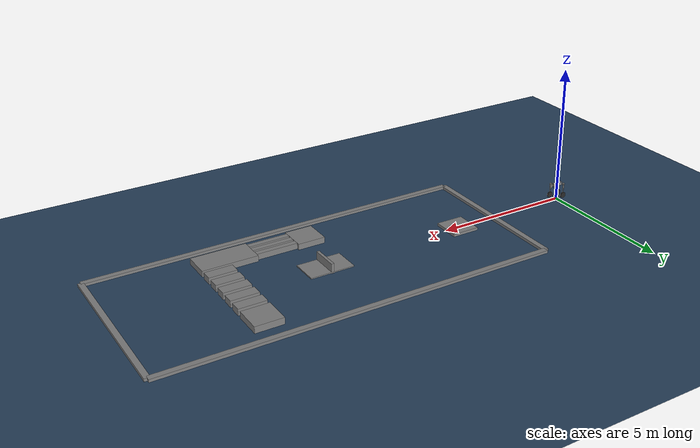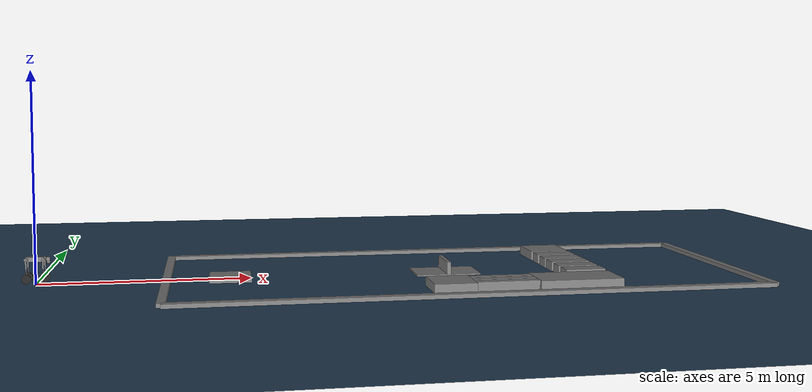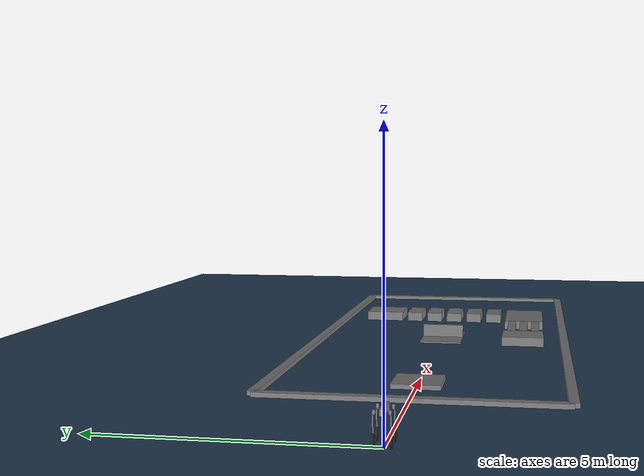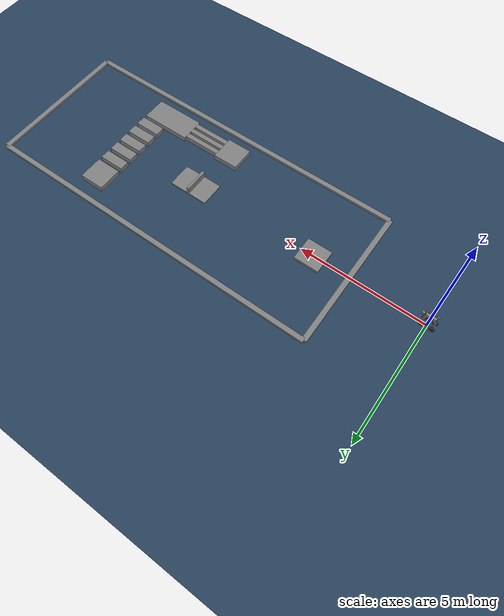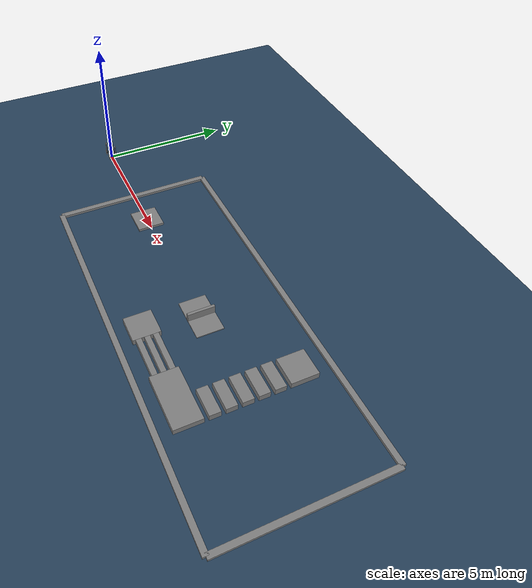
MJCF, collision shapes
<mujoco model="go2w scene">
  <include file="go2w.xml"/>

  <statistic center="0 0 0.1" extent="0.8"/>

  <visual>
    <headlight diffuse="0.6 0.6 0.6" ambient="0.3 0.3 0.3" specular="0 0 0"/>
    <rgba haze="0.15 0.25 0.35 1"/>
    <global azimuth="-130" elevation="-20"/>
  </visual>

  <asset>
    <texture type="skybox" builtin="gradient" rgb1="0.3 0.5 0.7" rgb2="0 0 0" width="512" height="3072"/>
    <texture type="2d" name="groundplane" builtin="checker" mark="edge" rgb1="0.2 0.3 0.4" rgb2="0.1 0.2 0.3"
      markrgb="0.8 0.8 0.8" width="300" height="300"/>
    <material name="groundplane" texture="groundplane" texuniform="true" texrepeat="5 5" reflectance="0.2"/>
  </asset>

  <worldbody>
    <light pos="0 0 1.5" dir="0 0 -1" directional="true"/>
    <geom name="floor" size="0 0 0.05" type="plane" material="groundplane"/>

        <geom pos="10 3 0.04" type="box"  size=" 7 0.1 0.05" quat="1.0 0 0 0"/>
    <geom pos="10 -3 0.04" type="box"  size=" 7 0.1 0.05" quat="1.0 0 0 0"/>
    <geom pos="3 0 0.04" type="box"  size=" 0.1 3 0.05" quat="1.0 0 0 0"/>
    <geom pos="17 0 0.04" type="box"  size=" 0.1 3 0.05" quat="1.0 0 0 0"/>
    <!--启动区 -->
    <geom pos="4.5 0 0.04" type="box"  size=" 0.5 0.5 0.05" quat="1.0 0 0 0"/>
    <!-- 斜坡 -->
    <geom pos="9.5 -2 0" type="box"  size=" 0.5 0.5 0.2" quat="1.0 0 0 0"/>
    <geom pos="10.75 -1.7 0" type="box"  size=" 0.75 0.1 0.2" quat="1.0 0 0 0"/>
    <geom pos="10.75 -2 0" type="box"  size=" 0.75 0.1 0.2" quat="1.0 0 0 0"/>
    <geom pos="10.75 -2.3 0" type="box"  size=" 0.75 0.1 0.2" quat="1.0 0 0 0"/>
    <geom pos="12.5 -2 0" type="box"  size=" 1 0.5 0.2" quat="1.0 0 0 0"/>

    <geom pos="13 -1.15 0.02" type="box"  size="0.5 0.2 0.2" quat="1.0 0 0 0"/>
    <geom pos="13 -0.6 0.02" type="box"  size="0.5 0.2 0.2" quat="1.0 0 0 0"/>
    <geom pos="13 -0.05 0.02" type="box"  size="0.5 0.2 0.2" quat="1.0 0 0 0"/>
    <geom pos="13 0.5 0.02" type="box"  size="0.5 0.2 0.2" quat="1.0 0 0 0"/>
    <geom pos="13 1.05 0.02" type="box"  size="0.5 0.2 0.2" quat="1.0 0 0 0"/>

    <geom pos="13 1.9 0.02" type="box"  size="0.5 0.5 0.2" quat="1.0 0 0 0"/>
        <!-- 高墙 -->
    <geom pos="9.8 0 0.02" type="box"  size="0.8 0.5 0.02" quat="1.0 0 0 0"/>
    <geom pos="9.8 0 0.02" type="box"  size="0.05 0.5 0.32" quat="1.0 0 0 0"/>
  </worldbody>
</mujoco>

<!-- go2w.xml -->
<mujoco model="go2">
  <compiler angle="radian" meshdir="assets" autolimits="true" />

  <option cone="elliptic" impratio="100" />

  <default>
    <default class="go2">
      <geom friction="0.4" margin="0.001" condim="1" />
      <joint axis="0 1 0" damping="0.1" armature="0.01" frictionloss="0.2" />
      <motor ctrlrange="-23.7 23.7" />
      <default class="abduction">
        <joint axis="1 0 0" range="-1.0472 1.0472" />
      </default>
      <default class="hip">
        <default class="front_hip">
          <joint range="-1.5708 3.4907" />
        </default>
        <default class="back_hip">
          <joint range="-0.5236 4.5379" />
        </default>
      </default>
      <default class="knee">
        <joint range="-2.7227 -0.83776" />
        <motor ctrlrange="-45.43 45.43" />
      </default>
      <default class="visual">
        <geom type="mesh" contype="0" conaffinity="0" group="2" />
      </default>
      <default class="collision">
        <geom group="3" />
        <default class="foot">
          <geom size="0.022" pos="-0.002 0 -0.2264" priority="1" condim="6"
            friction="0.8 0.02 0.01" />
        </default>
      </default>
    </default>
  </default>

  <asset>
    <material name="metal" rgba=".9 .95 .95 1" />
    <material name="black" rgba="0 0 0 1" />
    <material name="white" rgba="1 1 1 1" />
    <material name="gray" rgba="0.671705 0.692426 0.774270 1" />

    <mesh file="base_0.obj" />
    <mesh file="base_1.obj" />
    <mesh file="base_2.obj" />
    <mesh file="base_3.obj" />
    <mesh file="base_4.obj" />
    <mesh file="hip_0.obj" />
    <mesh file="hip_1.obj" />
    <mesh file="thigh_0.obj" />
    <mesh file="thigh_1.obj" />
    <mesh file="thigh_mirror_0.obj" />
    <mesh file="thigh_mirror_1.obj" />
    <mesh file="calf_mirror_0.obj" />
    <mesh file="calf_mirror_1.obj" />
    <mesh file="calf.stl" />
    <mesh file="calf_mirror.stl" />
    <mesh file="foot.obj" />
    <mesh file="wheel.stl" />
  </asset>

  <worldbody>
    <body name="base_link" pos="0 0 0.6" childclass="go2">
      <inertial pos="0.021112 0 -0.005366" quat="-0.000543471 0.713435 -0.00173769 0.700719"
        mass="6.921"
        diaginertia="0.107027 0.0980771 0.0244531" />
      <freejoint />
      <geom mesh="base_0" material="black" class="visual" />
      <geom mesh="base_1" material="black" class="visual" />
      <geom mesh="base_2" material="black" class="visual" />
      <geom mesh="base_3" material="white" class="visual" />
      <geom mesh="base_4" material="gray" class="visual" />
      <geom size="0.1881 0.04675 0.057" type="box" class="collision" />
      <geom size="0.05 0.045" pos="0.285 0 0.01" type="cylinder" class="collision" />
      <geom size="0.047" pos="0.293 0 -0.06" class="collision" />
      <site name="imu" pos="-0.02557 0 0.04232" />
      <body name="FL_hip" pos="0.1934 0.0465 0">
        <inertial pos="-0.0054 0.00194 -0.000105" quat="0.497014 0.499245 0.505462 0.498237"
          mass="0.678"
          diaginertia="0.00088403 0.000596003 0.000479967" />
        <joint name="FL_hip_joint" class="abduction" />
        <geom mesh="hip_0" material="metal" class="visual" />
        <geom mesh="hip_1" material="gray" class="visual" />
        <geom size="0.046 0.02" pos="0 0.08 0" quat="1 1 0 0" type="cylinder" class="collision" />
        <body name="FL_thigh" pos="0 0.0955 0">
          <inertial pos="-0.00374 -0.0223 -0.0327" quat="0.829533 0.0847635 -0.0200632 0.551623"
            mass="1.152"
            diaginertia="0.00594973 0.00584149 0.000878787" />
          <joint name="FL_thigh_joint" class="front_hip" />
          <geom mesh="thigh_0" material="metal" class="visual" />
          <geom mesh="thigh_1" material="gray" class="visual" />
          <geom size="0.1065 0.01225 0.017" pos="0 0 -0.1065" quat="0.707107 0 0.707107 0"
            type="box" class="collision" />
          <body name="FL_calf" pos="0 0 -0.213">
            <inertial pos="0.00629595 -0.000622121 -0.141417"
              quat="0.710672 0.00154099 -0.00450087 0.703508"
              mass="0.241352" diaginertia="0.0014901 0.00146356 5.31397e-05" />
            <joint name="FL_calf_joint" class="knee" />
            <geom mesh="calf" material="gray" class="visual" />
            <geom size="0.012 0.06" pos="0.008 0 -0.06" quat="0.994493 0 -0.104807 0"
              type="cylinder" class="collision" />
            <geom size="0.011 0.0325" pos="0.02 0 -0.148" quat="0.999688 0 0.0249974 0"
              type="cylinder" class="collision" />

            <body name="FL_wheel_link" pos="0 0 -0.2264">
              <inertial pos="-0.0 0.04 -0.0"
                quat="0.661419 0.248219 0.250051 0.662108" mass="0.98"
                diaginertia="0.003 0.0016 0.0016" />
              <joint name="FL_wheel_joint" pos="0 0 0" axis="0 1 0" />
              <geom type="cylinder" size="0.11 0.02" rgba="0.15 0.15 0.15 1" pos="0 0.0 0"
                    quat="0.707 0.707 0.0 0.0"  />
            </body>

          </body>
        </body>
      </body>
      <body name="FR_hip" pos="0.1934 -0.0465 0">
        <inertial pos="-0.0054 -0.00194 -0.000105" quat="0.498237 0.505462 0.499245 0.497014"
          mass="0.678"
          diaginertia="0.00088403 0.000596003 0.000479967" />
        <joint name="FR_hip_joint" class="abduction" />
        <geom mesh="hip_0" material="metal" class="visual" quat="4.63268e-05 1 0 0" />
        <geom mesh="hip_1" material="gray" class="visual" quat="4.63268e-05 1 0 0" />
        <geom size="0.046 0.02" pos="0 -0.08 0" quat="0.707107 0.707107 0 0" type="cylinder"
          class="collision" />
        <body name="FR_thigh" pos="0 -0.0955 0">
          <inertial pos="-0.00374 0.0223 -0.0327" quat="0.551623 -0.0200632 0.0847635 0.829533"
            mass="1.152"
            diaginertia="0.00594973 0.00584149 0.000878787" />
          <joint name="FR_thigh_joint" class="front_hip" />
          <geom mesh="thigh_mirror_0" material="metal" class="visual" />
          <geom mesh="thigh_mirror_1" material="gray" class="visual" />
          <geom size="0.1065 0.01225 0.017" pos="0 0 -0.1065" quat="0.707107 0 0.707107 0"
            type="box" class="collision" />
          <body name="FR_calf" pos="0 0 -0.213">
            <inertial pos="0.00629595 0.000622121 -0.141417"
              quat="0.703508 -0.00450087 0.00154099 0.710672"
              mass="0.241352" diaginertia="0.0014901 0.00146356 5.31397e-05" />
            <joint name="FR_calf_joint" class="knee" />
            <geom mesh="calf_mirror" material="gray" class="visual" />
            <geom size="0.013 0.06" pos="0.01 0 -0.06" quat="0.995004 0 -0.0998334 0"
              type="cylinder" class="collision" />
            <geom size="0.011 0.0325" pos="0.02 0 -0.148" quat="0.999688 0 0.0249974 0"
              type="cylinder" class="collision" />

            <body name="FR_wheel_link" pos="0 0 -0.2264">
              <inertial pos="-0.0 -0.04 -0.0"
                quat="0.661419 0.248219 0.250051 0.662108" mass="0.98"
                diaginertia="0.003 0.0016 0.0016" />
              <joint name="FR_wheel_joint" pos="0 0 0" axis="0 1 0" />
                            <geom type="cylinder" size="0.11 0.02" rgba="0.15 0.15 0.15 1" pos="0 0.0 0"
                    quat="0.707 0.707 0.0 0.0"  />
            </body>

          </body>
        </body>
      </body>
      <body name="RL_hip" pos="-0.1934 0.0465 0">
        <inertial pos="0.0054 0.00194 -0.000105" quat="0.505462 0.498237 0.497014 0.499245"
          mass="0.678"
          diaginertia="0.00088403 0.000596003 0.000479967" />
        <joint name="RL_hip_joint" class="abduction" />
        <geom mesh="hip_0" material="metal" class="visual" quat="4.63268e-05 0 1 0" />
        <geom mesh="hip_1" material="gray" class="visual" quat="4.63268e-05 0 1 0" />
        <geom size="0.046 0.02" pos="0 0.08 0" quat="0.707107 0.707107 0 0" type="cylinder"
          class="collision" />
        <body name="RL_thigh" pos="0 0.0955 0">
          <inertial pos="-0.00374 -0.0223 -0.0327" quat="0.829533 0.0847635 -0.0200632 0.551623"
            mass="1.152"
            diaginertia="0.00594973 0.00584149 0.000878787" />
          <joint name="RL_thigh_joint" class="back_hip" />
          <geom mesh="thigh_0" material="metal" class="visual" />
          <geom mesh="thigh_1" material="gray" class="visual" />
          <geom size="0.1065 0.01225 0.017" pos="0 0 -0.1065" quat="0.707107 0 0.707107 0"
            type="box" class="collision" />
          <body name="RL_calf" pos="0 0 -0.213">
            <inertial pos="0.00629595 -0.000622121 -0.141417"
              quat="0.710672 0.00154099 -0.00450087 0.703508"
              mass="0.241352" diaginertia="0.0014901 0.00146356 5.31397e-05" />
            <joint name="RL_calf_joint" class="knee" />
            <geom mesh="calf" material="gray" class="visual" />
            <geom size="0.013 0.06" pos="0.01 0 -0.06" quat="0.995004 0 -0.0998334 0"
              type="cylinder" class="collision" />
            <geom size="0.011 0.0325" pos="0.02 0 -0.148" quat="0.999688 0 0.0249974 0"
              type="cylinder" class="collision" />

            <body name="RL_wheel_link" pos="0 0 -0.2264">
              <inertial pos="-0.0 0.04 -0.0"
                quat="0.661419 0.248219 0.250051 0.662108" mass="0.98"
                diaginertia="0.003 0.0016 0.0016" />
              <joint name="RL_wheel_joint" pos="0 0 0" axis="0 1 0" />
                            <geom type="cylinder" size="0.11 0.02" rgba="0.15 0.15 0.15 1" pos="0 0.0 0"
                    quat="0.707 0.707 0.0 0.0"  />
            </body>

          </body>
        </body>
      </body>
      <body name="RR_hip" pos="-0.1934 -0.0465 0">
        <inertial pos="0.0054 -0.00194 -0.000105" quat="0.499245 0.497014 0.498237 0.505462"
          mass="0.678"
          diaginertia="0.00088403 0.000596003 0.000479967" />
        <joint name="RR_hip_joint" class="abduction" />
        <geom mesh="hip_0" material="metal" class="visual"
          quat="2.14617e-09 4.63268e-05 4.63268e-05 -1" />
        <geom mesh="hip_1" material="gray" class="visual"
          quat="2.14617e-09 4.63268e-05 4.63268e-05 -1" />
        <geom size="0.046 0.02" pos="0 -0.08 0" quat="0.707107 0.707107 0 0" type="cylinder"
          class="collision" />
        <body name="RR_thigh" pos="0 -0.0955 0">
          <inertial pos="-0.00374 0.0223 -0.0327" quat="0.551623 -0.0200632 0.0847635 0.829533"
            mass="1.152"
            diaginertia="0.00594973 0.00584149 0.000878787" />
          <joint name="RR_thigh_joint" class="back_hip" />
          <geom mesh="thigh_mirror_0" material="metal" class="visual" />
          <geom mesh="thigh_mirror_1" material="gray" class="visual" />
          <geom size="0.1065 0.01225 0.017" pos="0 0 -0.1065" quat="0.707107 0 0.707107 0"
            type="box" class="collision" />
          <body name="RR_calf" pos="0 0 -0.213">
            <inertial pos="0.00629595 0.000622121 -0.141417"
              quat="0.703508 -0.00450087 0.00154099 0.710672"
              mass="0.241352" diaginertia="0.0014901 0.00146356 5.31397e-05" />
            <joint name="RR_calf_joint" class="knee" />
            <geom mesh="calf_mirror" material="gray" class="visual" />
            <geom size="0.013 0.06" pos="0.01 0 -0.06" quat="0.995004 0 -0.0998334 0"
              type="cylinder" class="collision" />
            <geom size="0.011 0.0325" pos="0.02 0 -0.148" quat="0.999688 0 0.0249974 0"
              type="cylinder" class="collision" />

            <body name="RR_wheel_link" pos="0 0 -0.2264">
              <inertial pos="-0.0 -0.04 -0.0"
                quat="0.661419 0.248219 0.250051 0.662108" mass="0.98"
                diaginertia="0.003 0.0016 0.0016" />
              <joint name="RR_wheel_joint" pos="0 0 0" axis="0 1 0" />
            <geom type="cylinder" size="0.11 0.02" rgba="0.15 0.15 0.15 1" pos="0 0.0 0"
                    quat="0.707 0.707 0.0 0.0"  />
            </body>

          </body>
        </body>
      </body>
    </body>
  </worldbody>

  <actuator>
     <motor class="abduction" name="FL_hip" joint="FL_hip_joint" />
    <motor class="hip" name="FL_thigh" joint="FL_thigh_joint" />
    <motor class="knee" name="FL_calf" joint="FL_calf_joint" />
    <motor ctrlrange="-15 15" name="FL_wheel" joint="FL_wheel_joint" />

    <motor class="abduction" name="FR_hip" joint="FR_hip_joint" />
    <motor class="hip" name="FR_thigh" joint="FR_thigh_joint" />
    <motor class="knee" name="FR_calf" joint="FR_calf_joint" />
    <motor ctrlrange="-15 15" name="FR_wheel" joint="FR_wheel_joint" />

    <motor class="abduction" name="RL_hip" joint="RL_hip_joint" />
    <motor class="hip" name="RL_thigh" joint="RL_thigh_joint" />
    <motor class="knee" name="RL_calf" joint="RL_calf_joint" />
    <motor ctrlrange="-15 15" name="RL_wheel" joint="RL_wheel_joint" />

    <motor class="abduction" name="RR_hip" joint="RR_hip_joint" />
    <motor class="hip" name="RR_thigh" joint="RR_thigh_joint" />
    <motor class="knee" name="RR_calf" joint="RR_calf_joint" />
    <motor ctrlrange="-15 15" name="RR_wheel" joint="RR_wheel_joint" />
  </actuator>

  <sensor>
    <jointpos name="FR_hip_pos" joint="FR_hip_joint" />
    <jointpos name="FR_thigh_pos" joint="FR_thigh_joint" />
    <jointpos name="FR_calf_pos" joint="FR_calf_joint" />

    <jointpos name="FL_hip_pos" joint="FL_hip_joint" />
    <jointpos name="FL_thigh_pos" joint="FL_thigh_joint" />
    <jointpos name="FL_calf_pos" joint="FL_calf_joint" />

    <jointpos name="RR_hip_pos" joint="RR_hip_joint" />
    <jointpos name="RR_thigh_pos" joint="RR_thigh_joint" />
    <jointpos name="RR_calf_pos" joint="RR_calf_joint" />

    <jointpos name="RL_hip_pos" joint="RL_hip_joint" />
    <jointpos name="RL_thigh_pos" joint="RL_thigh_joint" />
    <jointpos name="RL_calf_pos" joint="RL_calf_joint" />

    <jointpos name="FR_wheel_pos" joint="FR_wheel_joint" />
    <jointpos name="FL_wheel_pos" joint="FL_wheel_joint" />
    <jointpos name="RR_wheel_pos" joint="RR_wheel_joint" />
    <jointpos name="RL_wheel_pos" joint="RL_wheel_joint" />

    <jointvel name="FR_hip_vel" joint="FR_hip_joint" />
    <jointvel name="FR_thigh_vel" joint="FR_thigh_joint" />
    <jointvel name="FR_calf_vel" joint="FR_calf_joint" />
    <jointvel name="FL_hip_vel" joint="FL_hip_joint" />
    <jointvel name="FL_thigh_vel" joint="FL_thigh_joint" />
    <jointvel name="FL_calf_vel" joint="FL_calf_joint" />
    <jointvel name="RR_hip_vel" joint="RR_hip_joint" />
    <jointvel name="RR_thigh_vel" joint="RR_thigh_joint" />
    <jointvel name="RR_calf_vel" joint="RR_calf_joint" />
    <jointvel name="RL_hip_vel" joint="RL_hip_joint" />
    <jointvel name="RL_thigh_vel" joint="RL_thigh_joint" />
    <jointvel name="RL_calf_vel" joint="RL_calf_joint" />

    <jointvel name="FR_wheel_vel" joint="FR_wheel_joint" noise="0.0"/>
    <jointvel name="FL_wheel_vel" joint="FL_wheel_joint" noise="0.0"/>
    <jointvel name="RR_wheel_vel" joint="RR_wheel_joint" noise="0.0"/>
    <jointvel name="RL_wheel_vel" joint="RL_wheel_joint" noise="0.0"/>

    <jointactuatorfrc name="FR_hip_torque" joint="FR_hip_joint" noise="0.01" />
    <jointactuatorfrc name="FR_thigh_torque" joint="FR_thigh_joint" noise="0.01" />
    <jointactuatorfrc name="FR_calf_torque" joint="FR_calf_joint" noise="0.01" />
    <jointactuatorfrc name="FL_hip_torque" joint="FL_hip_joint" noise="0.01" />
    <jointactuatorfrc name="FL_thigh_torque" joint="FL_thigh_joint" noise="0.01" />
    <jointactuatorfrc name="FL_calf_torque" joint="FL_calf_joint" noise="0.01" />
    <jointactuatorfrc name="RR_hip_torque" joint="RR_hip_joint" noise="0.01" />
    <jointactuatorfrc name="RR_thigh_torque" joint="RR_thigh_joint" noise="0.01" />
    <jointactuatorfrc name="RR_calf_torque" joint="RR_calf_joint" noise="0.01" />
    <jointactuatorfrc name="RL_hip_torque" joint="RL_hip_joint" noise="0.01" />
    <jointactuatorfrc name="RL_thigh_torque" joint="RL_thigh_joint" noise="0.01" />
    <jointactuatorfrc name="RL_calf_torque" joint="RL_calf_joint" noise="0.01" />

    <jointactuatorfrc name="FR_wheel_torque" joint="FR_wheel_joint" />
    <jointactuatorfrc name="FL_wheel_torque" joint="FL_wheel_joint" />
    <jointactuatorfrc name="RR_wheel_torque" joint="RR_wheel_joint" />
    <jointactuatorfrc name="RL_wheel_torque" joint="RL_wheel_joint" />

    <framequat name="orientation" objtype="site" objname="imu" noise="0.0"/>
    <framelinvel  name="base_lin_vel" objtype="site" objname="imu" />
    <gyro name="angular-velocity" site="imu" noise="0.0"/>
    <accelerometer name="linear-acceleration" site="imu" />

    <framepos name="frame_pos" objtype="site" objname="imu" />
    <framelinvel name="frame_vel" objtype="site" objname="imu" />
  </sensor>

</mujoco>
